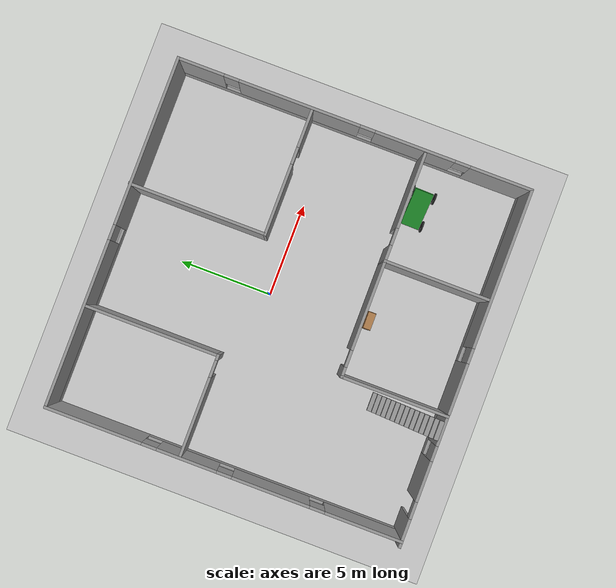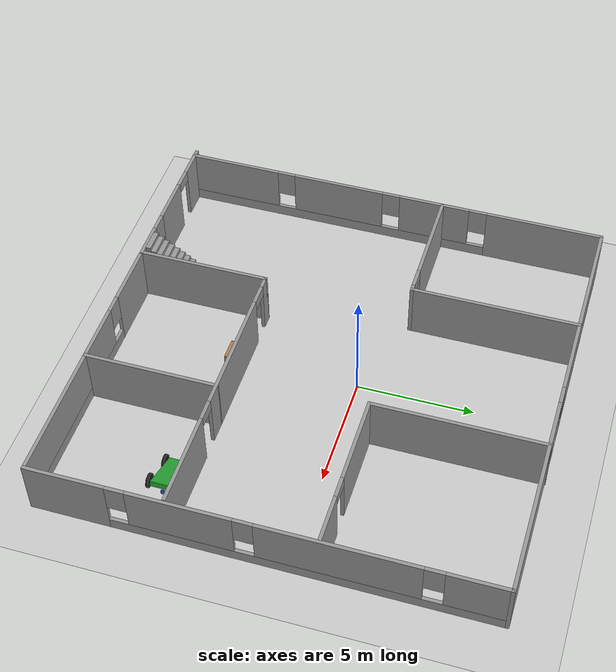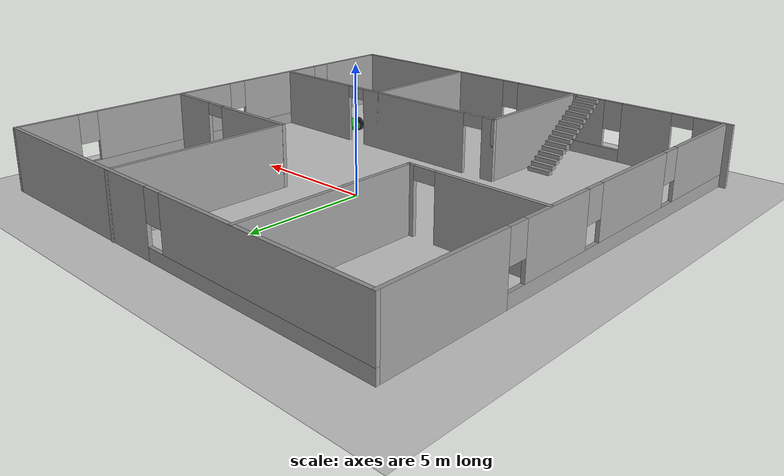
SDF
<sdf version="1.7">
 <world name="default">
  <model name="ground_plane">
   <static>1</static>
   <link name="link">
    <collision name="collision">
     <geometry><plane><normal>0 0 1</normal><size>100 100</size></plane></geometry>
     <surface><friction><ode><mu>100</mu><mu2>50</mu2></ode></friction></surface>
    </collision>
    <visual name="visual">
     <cast_shadows>0</cast_shadows>
     <geometry><plane><normal>0 0 1</normal><size>100 100</size></plane></geometry>
     <material>
      <script><uri>file://media/materials/scripts/gazebo.material</uri><name>Gazebo/Grey</name></script>
     </material>
    </visual>
   </link>
  </model>
  <model name="tony_house.world">
   <pose>0 -1 0 0 -0 0</pose>
   <link name="Stairs_0">
    <visual name="Stairs_0_Visual_0">
     <pose>-3.39052 -5.99335 0.083333 0 -0 0</pose>
     <geometry><box><size>1 0.233333 0.166667</size></box></geometry>
     <material>
      <script><uri>file://media/materials/scripts/gazebo.material</uri><name>Gazebo/Grey</name></script>
      <ambient>1 1 1 1</ambient>
     </material>
     <meta><layer>0</layer></meta>
    </visual>
    <collision name="Stairs_0_Collision_0">
     <geometry><box><size>1 0.233333 0.166667</size></box></geometry>
     <pose>-3.39052 -5.99335 0.083333 0 -0 0</pose>
    </collision>
    <visual name="Stairs_0_Visual_1">
     <pose>-3.39052 -6.22668 0.25 0 -0 0</pose>
     <geometry><box><size>1 0.233333 0.166667</size></box></geometry>
     <material>
      <script><uri>file://media/materials/scripts/gazebo.material</uri><name>Gazebo/Grey</name></script>
      <ambient>1 1 1 1</ambient>
     </material>
     <meta><layer>0</layer></meta>
    </visual>
    <collision name="Stairs_0_Collision_1">
     <geometry><box><size>1 0.233333 0.166667</size></box></geometry>
     <pose>-3.39052 -6.22668 0.25 0 -0 0</pose>
    </collision>
    <visual name="Stairs_0_Visual_2">
     <pose>-3.39052 -6.46001 0.416667 0 -0 0</pose>
     <geometry><box><size>1 0.233333 0.166667</size></box></geometry>
     <material>
      <script><uri>file://media/materials/scripts/gazebo.material</uri><name>Gazebo/Grey</name></script>
      <ambient>1 1 1 1</ambient>
     </material>
     <meta><layer>0</layer></meta>
    </visual>
    <collision name="Stairs_0_Collision_2">
     <geometry><box><size>1 0.233333 0.166667</size></box></geometry>
     <pose>-3.39052 -6.46001 0.416667 0 -0 0</pose>
    </collision>
    <visual name="Stairs_0_Visual_3">
     <pose>-3.39052 -6.69335 0.583333 0 -0 0</pose>
     <geometry><box><size>1 0.233333 0.166667</size></box></geometry>
     <material>
      <script><uri>file://media/materials/scripts/gazebo.material</uri><name>Gazebo/Grey</name></script>
      <ambient>1 1 1 1</ambient>
     </material>
     <meta><layer>0</layer></meta>
    </visual>
    <collision name="Stairs_0_Collision_3">
     <geometry><box><size>1 0.233333 0.166667</size></box></geometry>
     <pose>-3.39052 -6.69335 0.583333 0 -0 0</pose>
    </collision>
    <visual name="Stairs_0_Visual_4">
     <pose>-3.39052 -6.92668 0.75 0 -0 0</pose>
     <geometry><box><size>1 0.233333 0.166667</size></box></geometry>
     <material>
      <script><uri>file://media/materials/scripts/gazebo.material</uri><name>Gazebo/Grey</name></script>
      <ambient>1 1 1 1</ambient>
     </material>
     <meta><layer>0</layer></meta>
    </visual>
    <collision name="Stairs_0_Collision_4">
     <geometry><box><size>1 0.233333 0.166667</size></box></geometry>
     <pose>-3.39052 -6.92668 0.75 0 -0 0</pose>
    </collision>
    <visual name="Stairs_0_Visual_5">
     <pose>-3.39052 -7.16001 0.916667 0 -0 0</pose>
     <geometry><box><size>1 0.233333 0.166667</size></box></geometry>
     <material>
      <script><uri>file://media/materials/scripts/gazebo.material</uri><name>Gazebo/Grey</name></script>
      <ambient>1 1 1 1</ambient>
     </material>
     <meta><layer>0</layer></meta>
    </visual>
    <collision name="Stairs_0_Collision_5">
     <geometry><box><size>1 0.233333 0.166667</size></box></geometry>
     <pose>-3.39052 -7.16001 0.916667 0 -0 0</pose>
    </collision>
    <visual name="Stairs_0_Visual_6">
     <pose>-3.39052 -7.39335 1.08333 0 -0 0</pose>
     <geometry><box><size>1 0.233333 0.166667</size></box></geometry>
     <material>
      <script><uri>file://media/materials/scripts/gazebo.material</uri><name>Gazebo/Grey</name></script>
      <ambient>1 1 1 1</ambient>
     </material>
     <meta><layer>0</layer></meta>
    </visual>
    <collision name="Stairs_0_Collision_6">
     <geometry><box><size>1 0.233333 0.166667</size></box></geometry>
     <pose>-3.39052 -7.39335 1.08333 0 -0 0</pose>
    </collision>
    <visual name="Stairs_0_Visual_7">
     <pose>-3.39052 -7.62668 1.25 0 -0 0</pose>
     <geometry><box><size>1 0.233333 0.166667</size></box></geometry>
     <material>
      <script><uri>file://media/materials/scripts/gazebo.material</uri><name>Gazebo/Grey</name></script>
      <ambient>1 1 1 1</ambient>
     </material>
     <meta><layer>0</layer></meta>
    </visual>
    <collision name="Stairs_0_Collision_7">
     <geometry><box><size>1 0.233333 0.166667</size></box></geometry>
     <pose>-3.39052 -7.62668 1.25 0 -0 0</pose>
    </collision>
    <visual name="Stairs_0_Visual_8">
     <pose>-3.39052 -7.86001 1.41667 0 -0 0</pose>
     <geometry><box><size>1 0.233333 0.166667</size></box></geometry>
     <material>
      <script><uri>file://media/materials/scripts/gazebo.material</uri><name>Gazebo/Grey</name></script>
      <ambient>1 1 1 1</ambient>
     </material>
     <meta><layer>0</layer></meta>
    </visual>
    <collision name="Stairs_0_Collision_8">
     <geometry><box><size>1 0.233333 0.166667</size></box></geometry>
     <pose>-3.39052 -7.86001 1.41667 0 -0 0</pose>
    </collision>
    <visual name="Stairs_0_Visual_9">
     <pose>-3.39052 -8.09335 1.58333 0 -0 0</pose>
     <geometry><box><size>1 0.233333 0.166667</size></box></geometry>
     <material>
      <script><uri>file://media/materials/scripts/gazebo.material</uri><name>Gazebo/Grey</name></script>
      <ambient>1 1 1 1</ambient>
     </material>
     <meta><layer>0</layer></meta>
    </visual>
    <collision name="Stairs_0_Collision_9">
     <geometry><box><size>1 0.233333 0.166667</size></box></geometry>
     <pose>-3.39052 -8.09335 1.58333 0 -0 0</pose>
    </collision>
    <visual name="Stairs_0_Visual_10">
     <pose>-3.39052 -8.32668 1.75 0 -0 0</pose>
     <geometry><box><size>1 0.233333 0.166667</size></box></geometry>
     <material>
      <script><uri>file://media/materials/scripts/gazebo.material</uri><name>Gazebo/Grey</name></script>
      <ambient>1 1 1 1</ambient>
     </material>
     <meta><layer>0</layer></meta>
    </visual>
    <collision name="Stairs_0_Collision_10">
     <geometry><box><size>1 0.233333 0.166667</size></box></geometry>
     <pose>-3.39052 -8.32668 1.75 0 -0 0</pose>
    </collision>
    <visual name="Stairs_0_Visual_11">
     <pose>-3.39052 -8.56001 1.91667 0 -0 0</pose>
     <geometry><box><size>1 0.233333 0.166667</size></box></geometry>
     <material>
      <script><uri>file://media/materials/scripts/gazebo.material</uri><name>Gazebo/Grey</name></script>
      <ambient>1 1 1 1</ambient>
     </material>
     <meta><layer>0</layer></meta>
    </visual>
    <collision name="Stairs_0_Collision_11">
     <geometry><box><size>1 0.233333 0.166667</size></box></geometry>
     <pose>-3.39052 -8.56001 1.91667 0 -0 0</pose>
    </collision>
    <visual name="Stairs_0_Visual_12">
     <pose>-3.39052 -8.79335 2.08333 0 -0 0</pose>
     <geometry><box><size>1 0.233333 0.166667</size></box></geometry>
     <material>
      <script><uri>file://media/materials/scripts/gazebo.material</uri><name>Gazebo/Grey</name></script>
      <ambient>1 1 1 1</ambient>
     </material>
     <meta><layer>0</layer></meta>
    </visual>
    <collision name="Stairs_0_Collision_12">
     <geometry><box><size>1 0.233333 0.166667</size></box></geometry>
     <pose>-3.39052 -8.79335 2.08333 0 -0 0</pose>
    </collision>
    <visual name="Stairs_0_Visual_13">
     <pose>-3.39052 -9.02668 2.25 0 -0 0</pose>
     <geometry><box><size>1 0.233333 0.166667</size></box></geometry>
     <material>
      <script><uri>file://media/materials/scripts/gazebo.material</uri><name>Gazebo/Grey</name></script>
      <ambient>1 1 1 1</ambient>
     </material>
     <meta><layer>0</layer></meta>
    </visual>
    <collision name="Stairs_0_Collision_13">
     <geometry><box><size>1 0.233333 0.166667</size></box></geometry>
     <pose>-3.39052 -9.02668 2.25 0 -0 0</pose>
    </collision>
    <visual name="Stairs_0_Visual_14">
     <pose>-3.39052 -9.26001 2.41667 0 -0 0</pose>
     <geometry><box><size>1 0.233333 0.166667</size></box></geometry>
     <material>
      <script><uri>file://media/materials/scripts/gazebo.material</uri><name>Gazebo/Grey</name></script>
      <ambient>1 1 1 1</ambient>
     </material>
     <meta><layer>0</layer></meta>
    </visual>
    <collision name="Stairs_0_Collision_14">
     <geometry><box><size>1 0.233333 0.166667</size></box></geometry>
     <pose>-3.39052 -9.26001 2.41667 0 -0 0</pose>
    </collision>
   </link>
   <link name="Wall_1">
    <pose>-6.01156 -9.43056 0 0 -0 0.001171</pose>
    <visual name="Wall_1_Visual_0">
     <pose>-2.72986 0 1.25 0 -0 0</pose>
     <geometry><box><size>1.51416 0.15 2.5</size></box></geometry>
     <material>
      <script><uri>file://media/materials/scripts/gazebo.material</uri><name>Gazebo/Grey</name></script>
      <ambient>1 1 1 1</ambient>
     </material>
     <meta><layer>0</layer></meta>
    </visual>
    <collision name="Wall_1_Collision_0">
     <geometry><box><size>1.51416 0.15 2.5</size></box></geometry>
     <pose>-2.72986 0 1.25 0 -0 0</pose>
    </collision>
    <visual name="Wall_1_Visual_1">
     <pose>-0.004916 0 1.25 0 -0 0</pose>
     <geometry><box><size>2.13573 0.15 2.5</size></box></geometry>
     <material>
      <script><uri>file://media/materials/scripts/gazebo.material</uri><name>Gazebo/Grey</name></script>
      <ambient>1 1 1 1</ambient>
     </material>
     <meta><layer>0</layer></meta>
    </visual>
    <collision name="Wall_1_Collision_1">
     <geometry><box><size>2.13573 0.15 2.5</size></box></geometry>
     <pose>-0.004916 0 1.25 0 -0 0</pose>
    </collision>
    <visual name="Wall_1_Visual_2">
     <pose>2.27494 0 0.25 0 -0 0</pose>
     <geometry><box><size>2.42399 0.15 0.5</size></box></geometry>
     <material>
      <script><uri>file://media/materials/scripts/gazebo.material</uri><name>Gazebo/Grey</name></script>
      <ambient>1 1 1 1</ambient>
     </material>
     <meta><layer>0</layer></meta>
    </visual>
    <collision name="Wall_1_Collision_2">
     <geometry><box><size>2.42399 0.15 0.5</size></box></geometry>
     <pose>2.27494 0 0.25 0 -0 0</pose>
    </collision>
    <visual name="Wall_1_Visual_3">
     <pose>2.67494 0 1.5 0 -0 0</pose>
     <geometry><box><size>1.62399 0.15 2</size></box></geometry>
     <material>
      <script><uri>file://media/materials/scripts/gazebo.material</uri><name>Gazebo/Grey</name></script>
      <ambient>1 1 1 1</ambient>
     </material>
     <meta><layer>0</layer></meta>
    </visual>
    <collision name="Wall_1_Collision_3">
     <geometry><box><size>1.62399 0.15 2</size></box></geometry>
     <pose>2.67494 0 1.5 0 -0 0</pose>
    </collision>
    <visual name="Wall_1_Visual_4">
     <pose>1.46295 0 1.9 0 -0 0</pose>
     <geometry><box><size>0.8 0.15 1.2</size></box></geometry>
     <material>
      <script><uri>file://media/materials/scripts/gazebo.material</uri><name>Gazebo/Grey</name></script>
      <ambient>1 1 1 1</ambient>
     </material>
     <meta><layer>0</layer></meta>
    </visual>
    <collision name="Wall_1_Collision_4">
     <geometry><box><size>0.8 0.15 1.2</size></box></geometry>
     <pose>1.46295 0 1.9 0 -0 0</pose>
    </collision>
    <visual name="Wall_1_Visual_5">
     <pose>-1.52278 0 2.25 0 -0 0</pose>
     <geometry><box><size>0.9 0.15 0.5</size></box></geometry>
     <material>
      <script><uri>file://media/materials/scripts/gazebo.material</uri><name>Gazebo/Grey</name></script>
      <ambient>1 1 1 1</ambient>
     </material>
     <meta><layer>0</layer></meta>
    </visual>
    <collision name="Wall_1_Collision_5">
     <geometry><box><size>0.9 0.15 0.5</size></box></geometry>
     <pose>-1.52278 0 2.25 0 -0 0</pose>
    </collision>
   </link>
   <link name="Wall_10">
    <pose>3.32538 -3.82656 0 0 -0 0</pose>
    <visual name="Wall_10_Visual_0">
     <pose>-5.70576 0 1.25 0 -0 0</pose>
     <geometry><box><size>0.588485 0.15 2.5</size></box></geometry>
     <material>
      <script><uri>file://media/materials/scripts/gazebo.material</uri><name>Gazebo/Grey</name></script>
      <ambient>1 1 1 1</ambient>
     </material>
     <meta><layer>0</layer></meta>
    </visual>
    <collision name="Wall_10_Collision_0">
     <geometry><box><size>0.588485 0.15 2.5</size></box></geometry>
     <pose>-5.70576 0 1.25 0 -0 0</pose>
    </collision>
    <visual name="Wall_10_Visual_1">
     <pose>-1.72323 0 1.25 0 -0 0</pose>
     <geometry><box><size>5.57657 0.15 2.5</size></box></geometry>
     <material>
      <script><uri>file://media/materials/scripts/gazebo.material</uri><name>Gazebo/Grey</name></script>
      <ambient>1 1 1 1</ambient>
     </material>
     <meta><layer>0</layer></meta>
    </visual>
    <collision name="Wall_10_Collision_1">
     <geometry><box><size>5.57657 0.15 2.5</size></box></geometry>
     <pose>-1.72323 0 1.25 0 -0 0</pose>
    </collision>
    <visual name="Wall_10_Visual_2">
     <pose>3.98253 0 1.25 0 -0 0</pose>
     <geometry><box><size>4.03494 0.15 2.5</size></box></geometry>
     <material>
      <script><uri>file://media/materials/scripts/gazebo.material</uri><name>Gazebo/Grey</name></script>
      <ambient>1 1 1 1</ambient>
     </material>
     <meta><layer>0</layer></meta>
    </visual>
    <collision name="Wall_10_Collision_2">
     <geometry><box><size>4.03494 0.15 2.5</size></box></geometry>
     <pose>3.98253 0 1.25 0 -0 0</pose>
    </collision>
    <visual name="Wall_10_Visual_3">
     <pose>-4.96152 0 2.25 0 -0 0</pose>
     <geometry><box><size>0.9 0.15 0.5</size></box></geometry>
     <material>
      <script><uri>file://media/materials/scripts/gazebo.material</uri><name>Gazebo/Grey</name></script>
      <ambient>1 1 1 1</ambient>
     </material>
     <meta><layer>0</layer></meta>
    </visual>
    <collision name="Wall_10_Collision_3">
     <geometry><box><size>0.9 0.15 0.5</size></box></geometry>
     <pose>-4.96152 0 2.25 0 -0 0</pose>
    </collision>
    <visual name="Wall_10_Visual_4">
     <pose>1.51506 0 2.25 0 -0 0</pose>
     <geometry><box><size>0.9 0.15 0.5</size></box></geometry>
     <material>
      <script><uri>file://media/materials/scripts/gazebo.material</uri><name>Gazebo/Grey</name></script>
      <ambient>1 1 1 1</ambient>
     </material>
     <meta><layer>0</layer></meta>
    </visual>
    <collision name="Wall_10_Collision_4">
     <geometry><box><size>0.9 0.15 0.5</size></box></geometry>
     <pose>1.51506 0 2.25 0 -0 0</pose>
    </collision>
   </link>
   <link name="Wall_12">
    <collision name="Wall_12_Collision">
     <geometry><box><size>5.75 0.15 2.5</size></box></geometry>
     <pose>0 0 1.25 0 -0 0</pose>
    </collision>
    <visual name="Wall_12_Visual">
     <pose>0 0 1.25 0 -0 0</pose>
     <geometry><box><size>5.75 0.15 2.5</size></box></geometry>
     <material>
      <script><uri>file://media/materials/scripts/gazebo.material</uri><name>Gazebo/Grey</name></script>
      <ambient>1 1 1 1</ambient>
     </material>
     <meta><layer>0</layer></meta>
    </visual>
    <pose>3.54453 -6.62656 0 0 -0 -1.5708</pose>
   </link>
   <link name="Wall_14">
    <pose>5.98556 2.23237 0 0 -0 0</pose>
    <visual name="Wall_14_Visual_0">
     <pose>-1.46444 0 1.25 0 -0 0</pose>
     <geometry><box><size>3.82112 0.15 2.5</size></box></geometry>
     <material>
      <script><uri>file://media/materials/scripts/gazebo.material</uri><name>Gazebo/Grey</name></script>
      <ambient>1 1 1 1</ambient>
     </material>
     <meta><layer>0</layer></meta>
    </visual>
    <collision name="Wall_14_Collision_0">
     <geometry><box><size>3.82112 0.15 2.5</size></box></geometry>
     <pose>-1.46444 0 1.25 0 -0 0</pose>
    </collision>
    <visual name="Wall_14_Visual_1">
     <pose>2.36056 0 1.25 0 -0 0</pose>
     <geometry><box><size>2.02888 0.15 2.5</size></box></geometry>
     <material>
      <script><uri>file://media/materials/scripts/gazebo.material</uri><name>Gazebo/Grey</name></script>
      <ambient>1 1 1 1</ambient>
     </material>
     <meta><layer>0</layer></meta>
    </visual>
    <collision name="Wall_14_Collision_1">
     <geometry><box><size>2.02888 0.15 2.5</size></box></geometry>
     <pose>2.36056 0 1.25 0 -0 0</pose>
    </collision>
    <visual name="Wall_14_Visual_2">
     <pose>0.896121 0 2.25 0 -0 0</pose>
     <geometry><box><size>0.9 0.15 0.5</size></box></geometry>
     <material>
      <script><uri>file://media/materials/scripts/gazebo.material</uri><name>Gazebo/Grey</name></script>
      <ambient>1 1 1 1</ambient>
     </material>
     <meta><layer>0</layer></meta>
    </visual>
    <collision name="Wall_14_Collision_2">
     <geometry><box><size>0.9 0.15 0.5</size></box></geometry>
     <pose>0.896121 0 2.25 0 -0 0</pose>
    </collision>
   </link>
   <link name="Wall_18">
    <collision name="Wall_18_Collision">
     <geometry><box><size>7.25 0.15 2.5</size></box></geometry>
     <pose>0 0 1.25 0 -0 0</pose>
    </collision>
    <visual name="Wall_18_Visual">
     <pose>0 0 1.25 0 -0 0</pose>
     <geometry><box><size>7.25 0.15 2.5</size></box></geometry>
     <material>
      <script><uri>file://media/materials/scripts/gazebo.material</uri><name>Gazebo/Grey</name></script>
      <ambient>1 1 1 1</ambient>
     </material>
     <meta><layer>0</layer></meta>
    </visual>
    <pose>-3.77724 5.84349 0 0 -0 -1.5708</pose>
   </link>
   <link name="Wall_20">
    <collision name="Wall_20_Collision">
     <geometry><box><size>7.25 0.15 2.5</size></box></geometry>
     <pose>0 0 1.25 0 -0 0</pose>
    </collision>
    <visual name="Wall_20_Visual">
     <pose>0 0 1.25 0 -0 0</pose>
     <geometry><box><size>7.25 0.15 2.5</size></box></geometry>
     <material>
      <script><uri>file://media/materials/scripts/gazebo.material</uri><name>Gazebo/Grey</name></script>
      <ambient>1 1 1 1</ambient>
     </material>
     <meta><layer>0</layer></meta>
    </visual>
    <pose>2.68958 5.89002 0 0 -0 -1.5708</pose>
   </link>
   <link name="Wall_22">
    <pose>-6.45224 2.29349 0 0 -0 3.14159</pose>
    <visual name="Wall_22_Visual_0">
     <pose>-2.58857 0 1.25 0 -0 0</pose>
     <geometry><box><size>0.322859 0.15 2.5</size></box></geometry>
     <material>
      <script><uri>file://media/materials/scripts/gazebo.material</uri><name>Gazebo/Grey</name></script>
      <ambient>1 1 1 1</ambient>
     </material>
     <meta><layer>0</layer></meta>
    </visual>
    <collision name="Wall_22_Collision_0">
     <geometry><box><size>0.322859 0.15 2.5</size></box></geometry>
     <pose>-2.58857 0 1.25 0 -0 0</pose>
    </collision>
    <visual name="Wall_22_Visual_1">
     <pose>0.611429 0 1.25 0 -0 0</pose>
     <geometry><box><size>4.27714 0.15 2.5</size></box></geometry>
     <material>
      <script><uri>file://media/materials/scripts/gazebo.material</uri><name>Gazebo/Grey</name></script>
      <ambient>1 1 1 1</ambient>
     </material>
     <meta><layer>0</layer></meta>
    </visual>
    <collision name="Wall_22_Collision_1">
     <geometry><box><size>4.27714 0.15 2.5</size></box></geometry>
     <pose>0.611429 0 1.25 0 -0 0</pose>
    </collision>
    <visual name="Wall_22_Visual_2">
     <pose>-1.97714 0 2.25 0 -0 0</pose>
     <geometry><box><size>0.9 0.15 0.5</size></box></geometry>
     <material>
      <script><uri>file://media/materials/scripts/gazebo.material</uri><name>Gazebo/Grey</name></script>
      <ambient>1 1 1 1</ambient>
     </material>
     <meta><layer>0</layer></meta>
    </visual>
    <collision name="Wall_22_Collision_2">
     <geometry><box><size>0.9 0.15 0.5</size></box></geometry>
     <pose>-1.97714 0 2.25 0 -0 0</pose>
    </collision>
   </link>
   <link name="Wall_24">
    <collision name="Wall_24_Collision">
     <geometry><box><size>5.75 0.15 2.5</size></box></geometry>
     <pose>0 0 1.25 0 -0 0</pose>
    </collision>
    <visual name="Wall_24_Visual">
     <pose>0 0 1.25 0 -0 0</pose>
     <geometry><box><size>5.75 0.15 2.5</size></box></geometry>
     <material>
      <script><uri>file://media/materials/scripts/gazebo.material</uri><name>Gazebo/Grey</name></script>
      <ambient>1 1 1 1</ambient>
     </material>
     <meta><layer>0</layer></meta>
    </visual>
    <pose>-2.59962 -6.62656 0 0 -0 -1.5708</pose>
   </link>
   <link name="Wall_3">
    <pose>3.49858 -9.44002 0 0 -0 0</pose>
    <visual name="Wall_3_Visual_0">
     <pose>-4.64469 0 1.25 0 -0 0</pose>
     <geometry><box><size>2.71062 0.15 2.5</size></box></geometry>
     <material>
      <script><uri>file://media/materials/scripts/gazebo.material</uri><name>Gazebo/Grey</name></script>
      <ambient>1 1 1 1</ambient>
     </material>
     <meta><layer>0</layer></meta>
    </visual>
    <collision name="Wall_3_Collision_0">
     <geometry><box><size>2.71062 0.15 2.5</size></box></geometry>
     <pose>-4.64469 0 1.25 0 -0 0</pose>
    </collision>
    <visual name="Wall_3_Visual_1">
     <pose>1.35531 0 0.25 0 -0 0</pose>
     <geometry><box><size>9.28938 0.15 0.5</size></box></geometry>
     <material>
      <script><uri>file://media/materials/scripts/gazebo.material</uri><name>Gazebo/Grey</name></script>
      <ambient>1 1 1 1</ambient>
     </material>
     <meta><layer>0</layer></meta>
    </visual>
    <collision name="Wall_3_Collision_1">
     <geometry><box><size>9.28938 0.15 0.5</size></box></geometry>
     <pose>1.35531 0 0.25 0 -0 0</pose>
    </collision>
    <visual name="Wall_3_Visual_2">
     <pose>1.75531 0 1.5 0 -0 0</pose>
     <geometry><box><size>8.48938 0.15 2</size></box></geometry>
     <material>
      <script><uri>file://media/materials/scripts/gazebo.material</uri><name>Gazebo/Grey</name></script>
      <ambient>1 1 1 1</ambient>
     </material>
     <meta><layer>0</layer></meta>
    </visual>
    <collision name="Wall_3_Collision_2">
     <geometry><box><size>8.48938 0.15 2</size></box></geometry>
     <pose>1.75531 0 1.5 0 -0 0</pose>
    </collision>
    <visual name="Wall_3_Visual_3">
     <pose>-2.88938 0 1.9 0 -0 0</pose>
     <geometry><box><size>0.8 0.15 1.2</size></box></geometry>
     <material>
      <script><uri>file://media/materials/scripts/gazebo.material</uri><name>Gazebo/Grey</name></script>
      <ambient>1 1 1 1</ambient>
     </material>
     <meta><layer>0</layer></meta>
    </visual>
    <collision name="Wall_3_Collision_3">
     <geometry><box><size>0.8 0.15 1.2</size></box></geometry>
     <pose>-2.88938 0 1.9 0 -0 0</pose>
    </collision>
   </link>
   <link name="Wall_4">
    <pose>9.42358 -0.015016 0 0 -0 1.5708</pose>
    <visual name="Wall_4_Visual_0">
     <pose>-7.8218 0 1.25 0 -0 0</pose>
     <geometry><box><size>3.3564 0.15 2.5</size></box></geometry>
     <material>
      <script><uri>file://media/materials/scripts/gazebo.material</uri><name>Gazebo/Grey</name></script>
      <ambient>1 1 1 1</ambient>
     </material>
     <meta><layer>0</layer></meta>
    </visual>
    <collision name="Wall_4_Collision_0">
     <geometry><box><size>3.3564 0.15 2.5</size></box></geometry>
     <pose>-7.8218 0 1.25 0 -0 0</pose>
    </collision>
    <visual name="Wall_4_Visual_1">
     <pose>1.6782 0 0.25 0 -0 0</pose>
     <geometry><box><size>15.6436 0.15 0.5</size></box></geometry>
     <material>
      <script><uri>file://media/materials/scripts/gazebo.material</uri><name>Gazebo/Grey</name></script>
      <ambient>1 1 1 1</ambient>
     </material>
     <meta><layer>0</layer></meta>
    </visual>
    <collision name="Wall_4_Collision_1">
     <geometry><box><size>15.6436 0.15 0.5</size></box></geometry>
     <pose>1.6782 0 0.25 0 -0 0</pose>
    </collision>
    <visual name="Wall_4_Visual_2">
     <pose>-3.21561 0 1.5 0 -0 0</pose>
     <geometry><box><size>4.25599 0.15 2</size></box></geometry>
     <material>
      <script><uri>file://media/materials/scripts/gazebo.material</uri><name>Gazebo/Grey</name></script>
      <ambient>1 1 1 1</ambient>
     </material>
     <meta><layer>0</layer></meta>
    </visual>
    <collision name="Wall_4_Collision_2">
     <geometry><box><size>4.25599 0.15 2</size></box></geometry>
     <pose>-3.21561 0 1.5 0 -0 0</pose>
    </collision>
    <visual name="Wall_4_Visual_3">
     <pose>2.94431 0 1.5 0 -0 0</pose>
     <geometry><box><size>6.46384 0.15 2</size></box></geometry>
     <material>
      <script><uri>file://media/materials/scripts/gazebo.material</uri><name>Gazebo/Grey</name></script>
      <ambient>1 1 1 1</ambient>
     </material>
     <meta><layer>0</layer></meta>
    </visual>
    <collision name="Wall_4_Collision_3">
     <geometry><box><size>6.46384 0.15 2</size></box></geometry>
     <pose>2.94431 0 1.5 0 -0 0</pose>
    </collision>
    <visual name="Wall_4_Visual_4">
     <pose>8.23811 0 1.5 0 -0 0</pose>
     <geometry><box><size>2.52377 0.15 2</size></box></geometry>
     <material>
      <script><uri>file://media/materials/scripts/gazebo.material</uri><name>Gazebo/Grey</name></script>
      <ambient>1 1 1 1</ambient>
     </material>
     <meta><layer>0</layer></meta>
    </visual>
    <collision name="Wall_4_Collision_4">
     <geometry><box><size>2.52377 0.15 2</size></box></geometry>
     <pose>8.23811 0 1.5 0 -0 0</pose>
    </collision>
    <visual name="Wall_4_Visual_5">
     <pose>-5.7436 0 1.9 0 -0 0</pose>
     <geometry><box><size>0.8 0.15 1.2</size></box></geometry>
     <material>
      <script><uri>file://media/materials/scripts/gazebo.material</uri><name>Gazebo/Grey</name></script>
      <ambient>1 1 1 1</ambient>
     </material>
     <meta><layer>0</layer></meta>
    </visual>
    <collision name="Wall_4_Collision_5">
     <geometry><box><size>0.8 0.15 1.2</size></box></geometry>
     <pose>-5.7436 0 1.9 0 -0 0</pose>
    </collision>
    <visual name="Wall_4_Visual_6">
     <pose>-0.687612 0 1.9 0 -0 0</pose>
     <geometry><box><size>0.8 0.15 1.2</size></box></geometry>
     <material>
      <script><uri>file://media/materials/scripts/gazebo.material</uri><name>Gazebo/Grey</name></script>
      <ambient>1 1 1 1</ambient>
     </material>
     <meta><layer>0</layer></meta>
    </visual>
    <collision name="Wall_4_Collision_6">
     <geometry><box><size>0.8 0.15 1.2</size></box></geometry>
     <pose>-0.687612 0 1.9 0 -0 0</pose>
    </collision>
    <visual name="Wall_4_Visual_7">
     <pose>6.57623 0 1.9 0 -0 0</pose>
     <geometry><box><size>0.8 0.15 1.2</size></box></geometry>
     <material>
      <script><uri>file://media/materials/scripts/gazebo.material</uri><name>Gazebo/Grey</name></script>
      <ambient>1 1 1 1</ambient>
     </material>
     <meta><layer>0</layer></meta>
    </visual>
    <collision name="Wall_4_Collision_7">
     <geometry><box><size>0.8 0.15 1.2</size></box></geometry>
     <pose>6.57623 0 1.9 0 -0 0</pose>
    </collision>
   </link>
   <link name="Wall_5">
    <pose>0.123583 9.40998 0 0 -0 3.14159</pose>
    <visual name="Wall_5_Visual_0">
     <pose>-4.87823 0 1.25 0 -0 0</pose>
     <geometry><box><size>8.99354 0.15 2.5</size></box></geometry>
     <material>
      <script><uri>file://media/materials/scripts/gazebo.material</uri><name>Gazebo/Grey</name></script>
      <ambient>1 1 1 1</ambient>
     </material>
     <meta><layer>0</layer></meta>
    </visual>
    <collision name="Wall_5_Collision_0">
     <geometry><box><size>8.99354 0.15 2.5</size></box></geometry>
     <pose>-4.87823 0 1.25 0 -0 0</pose>
    </collision>
    <visual name="Wall_5_Visual_1">
     <pose>4.49677 0 0.25 0 -0 0</pose>
     <geometry><box><size>9.75646 0.15 0.5</size></box></geometry>
     <material>
      <script><uri>file://media/materials/scripts/gazebo.material</uri><name>Gazebo/Grey</name></script>
      <ambient>1 1 1 1</ambient>
     </material>
     <meta><layer>0</layer></meta>
    </visual>
    <collision name="Wall_5_Collision_1">
     <geometry><box><size>9.75646 0.15 0.5</size></box></geometry>
     <pose>4.49677 0 0.25 0 -0 0</pose>
    </collision>
    <visual name="Wall_5_Visual_2">
     <pose>4.89677 0 1.5 0 -0 0</pose>
     <geometry><box><size>8.95646 0.15 2</size></box></geometry>
     <material>
      <script><uri>file://media/materials/scripts/gazebo.material</uri><name>Gazebo/Grey</name></script>
      <ambient>1 1 1 1</ambient>
     </material>
     <meta><layer>0</layer></meta>
    </visual>
    <collision name="Wall_5_Collision_2">
     <geometry><box><size>8.95646 0.15 2</size></box></geometry>
     <pose>4.89677 0 1.5 0 -0 0</pose>
    </collision>
    <visual name="Wall_5_Visual_3">
     <pose>0.018538 0 1.9 0 -0 0</pose>
     <geometry><box><size>0.8 0.15 1.2</size></box></geometry>
     <material>
      <script><uri>file://media/materials/scripts/gazebo.material</uri><name>Gazebo/Grey</name></script>
      <ambient>1 1 1 1</ambient>
     </material>
     <meta><layer>0</layer></meta>
    </visual>
    <collision name="Wall_5_Collision_3">
     <geometry><box><size>0.8 0.15 1.2</size></box></geometry>
     <pose>0.018538 0 1.9 0 -0 0</pose>
    </collision>
   </link>
   <link name="Wall_6">
    <pose>-9.17642 -0.015016 0 0 -0 -1.5708</pose>
    <visual name="Wall_6_Visual_0">
     <pose>-6.9156 0 1.25 0 -0 0</pose>
     <geometry><box><size>5.1688 0.15 2.5</size></box></geometry>
     <material>
      <script><uri>file://media/materials/scripts/gazebo.material</uri><name>Gazebo/Grey</name></script>
      <ambient>1 1 1 1</ambient>
     </material>
     <meta><layer>0</layer></meta>
    </visual>
    <collision name="Wall_6_Collision_0">
     <geometry><box><size>5.1688 0.15 2.5</size></box></geometry>
     <pose>-6.9156 0 1.25 0 -0 0</pose>
    </collision>
    <visual name="Wall_6_Visual_1">
     <pose>2.5844 0 0.25 0 -0 0</pose>
     <geometry><box><size>13.8312 0.15 0.5</size></box></geometry>
     <material>
      <script><uri>file://media/materials/scripts/gazebo.material</uri><name>Gazebo/Grey</name></script>
      <ambient>1 1 1 1</ambient>
     </material>
     <meta><layer>0</layer></meta>
    </visual>
    <collision name="Wall_6_Collision_1">
     <geometry><box><size>13.8312 0.15 0.5</size></box></geometry>
     <pose>2.5844 0 0.25 0 -0 0</pose>
    </collision>
    <visual name="Wall_6_Visual_2">
     <pose>-1.94373 0 1.5 0 -0 0</pose>
     <geometry><box><size>3.17493 0.15 2</size></box></geometry>
     <material>
      <script><uri>file://media/materials/scripts/gazebo.material</uri><name>Gazebo/Grey</name></script>
      <ambient>1 1 1 1</ambient>
     </material>
     <meta><layer>0</layer></meta>
    </visual>
    <collision name="Wall_6_Collision_2">
     <geometry><box><size>3.17493 0.15 2</size></box></geometry>
     <pose>-1.94373 0 1.5 0 -0 0</pose>
    </collision>
    <visual name="Wall_6_Visual_3">
     <pose>2.50201 0 1.5 0 -0 0</pose>
     <geometry><box><size>4.11655 0.15 2</size></box></geometry>
     <material>
      <script><uri>file://media/materials/scripts/gazebo.material</uri><name>Gazebo/Grey</name></script>
      <ambient>1 1 1 1</ambient>
     </material>
     <meta><layer>0</layer></meta>
    </visual>
    <collision name="Wall_6_Collision_3">
     <geometry><box><size>4.11655 0.15 2</size></box></geometry>
     <pose>2.50201 0 1.5 0 -0 0</pose>
    </collision>
    <visual name="Wall_6_Visual_4">
     <pose>7.43014 0 1.5 0 -0 0</pose>
     <geometry><box><size>4.13971 0.15 2</size></box></geometry>
     <material>
      <script><uri>file://media/materials/scripts/gazebo.material</uri><name>Gazebo/Grey</name></script>
      <ambient>1 1 1 1</ambient>
     </material>
     <meta><layer>0</layer></meta>
    </visual>
    <collision name="Wall_6_Collision_4">
     <geometry><box><size>4.13971 0.15 2</size></box></geometry>
     <pose>7.43014 0 1.5 0 -0 0</pose>
    </collision>
    <visual name="Wall_6_Visual_5">
     <pose>-3.9312 0 1.9 0 -0 0</pose>
     <geometry><box><size>0.8 0.15 1.2</size></box></geometry>
     <material>
      <script><uri>file://media/materials/scripts/gazebo.material</uri><name>Gazebo/Grey</name></script>
      <ambient>1 1 1 1</ambient>
     </material>
     <meta><layer>0</layer></meta>
    </visual>
    <collision name="Wall_6_Collision_5">
     <geometry><box><size>0.8 0.15 1.2</size></box></geometry>
     <pose>-3.9312 0 1.9 0 -0 0</pose>
    </collision>
    <visual name="Wall_6_Visual_6">
     <pose>0.043735 0 1.9 0 -0 0</pose>
     <geometry><box><size>0.8 0.15 1.2</size></box></geometry>
     <material>
      <script><uri>file://media/materials/scripts/gazebo.material</uri><name>Gazebo/Grey</name></script>
      <ambient>1 1 1 1</ambient>
     </material>
     <meta><layer>0</layer></meta>
    </visual>
    <collision name="Wall_6_Collision_6">
     <geometry><box><size>0.8 0.15 1.2</size></box></geometry>
     <pose>0.043735 0 1.9 0 -0 0</pose>
    </collision>
    <visual name="Wall_6_Visual_7">
     <pose>4.96028 0 1.9 0 -0 0</pose>
     <geometry><box><size>0.8 0.15 1.2</size></box></geometry>
     <material>
      <script><uri>file://media/materials/scripts/gazebo.material</uri><name>Gazebo/Grey</name></script>
      <ambient>1 1 1 1</ambient>
     </material>
     <meta><layer>0</layer></meta>
    </visual>
    <collision name="Wall_6_Collision_7">
     <geometry><box><size>0.8 0.15 1.2</size></box></geometry>
     <pose>4.96028 0 1.9 0 -0 0</pose>
    </collision>
   </link>
   <static>1</static>
  </model>
  <model name="bookshelf_0">
   <static>1</static>
   <link name="link">
    <inertial><mass>1</mass></inertial>
    <collision name="back">
     <pose>0 0.005 0.6 0 -0 0</pose>
     <geometry><box><size>0.9 0.01 1.2</size></box></geometry>
    </collision>
    <visual name="visual1">
     <pose>0 0.005 0.6 0 -0 0</pose>
     <geometry><box><size>0.9 0.01 1.2</size></box></geometry>
     <material>
      <script><uri>file://media/materials/scripts/gazebo.material</uri><name>Gazebo/Wood</name></script>
     </material>
    </visual>
    <collision name="left_side">
     <pose>0.45 -0.195 0.6 0 -0 0</pose>
     <geometry><box><size>0.02 0.4 1.2</size></box></geometry>
    </collision>
    <visual name="visual2">
     <pose>0.45 -0.195 0.6 0 -0 0</pose>
     <geometry><box><size>0.02 0.4 1.2</size></box></geometry>
     <material>
      <script><uri>file://media/materials/scripts/gazebo.material</uri><name>Gazebo/Wood</name></script>
     </material>
    </visual>
    <collision name="right_side">
     <pose>-0.45 -0.195 0.6 0 -0 0</pose>
     <geometry><box><size>0.02 0.4 1.2</size></box></geometry>
    </collision>
    <visual name="visual3">
     <pose>-0.45 -0.195 0.6 0 -0 0</pose>
     <geometry><box><size>0.02 0.4 1.2</size></box></geometry>
     <material>
      <script><uri>file://media/materials/scripts/gazebo.material</uri><name>Gazebo/Wood</name></script>
     </material>
    </visual>
    <collision name="bottom">
     <pose>0 -0.195 0.03 0 -0 0</pose>
     <geometry><box><size>0.88 0.4 0.06</size></box></geometry>
    </collision>
    <visual name="visual4">
     <pose>0 -0.195 0.03 0 -0 0</pose>
     <geometry><box><size>0.88 0.4 0.06</size></box></geometry>
     <material>
      <script><uri>file://media/materials/scripts/gazebo.material</uri><name>Gazebo/Wood</name></script>
     </material>
    </visual>
    <collision name="top">
     <pose>0 -0.195 1.19 0 -0 0</pose>
     <geometry><box><size>0.88 0.4 0.02</size></box></geometry>
    </collision>
    <visual name="visual5">
     <pose>0 -0.195 1.19 0 -0 0</pose>
     <geometry><box><size>0.88 0.4 0.02</size></box></geometry>
     <material>
      <script><uri>file://media/materials/scripts/gazebo.material</uri><name>Gazebo/Wood</name></script>
     </material>
    </visual>
    <collision name="low_shelf">
     <pose>0 -0.195 0.43 0 -0 0</pose>
     <geometry><box><size>0.88 0.4 0.02</size></box></geometry>
    </collision>
    <visual name="visual6">
     <pose>0 -0.195 0.43 0 -0 0</pose>
     <geometry><box><size>0.88 0.4 0.02</size></box></geometry>
     <material>
      <script><uri>file://media/materials/scripts/gazebo.material</uri><name>Gazebo/Wood</name></script>
     </material>
    </visual>
    <collision name="high_shelf">
     <pose>0 -0.195 0.8 0 -0 0</pose>
     <geometry><box><size>0.88 0.4 0.02</size></box></geometry>
    </collision>
    <visual name="visual7">
     <pose>0 -0.195 0.8 0 -0 0</pose>
     <geometry><box><size>0.88 0.4 0.02</size></box></geometry>
     <material>
      <script><uri>file://media/materials/scripts/gazebo.material</uri><name>Gazebo/Wood</name></script>
     </material>
    </visual>
   </link>
   <pose>0.526722 -5.07562 0 0 -0 0</pose>
  </model>
  <model name="car">
   <link name="chassis">
    <pose>0 0 0.3 0 -0 0</pose>
    <collision name="collision"><geometry><box><size>2 1 0.2</size></box></geometry></collision>
    <visual name="visual">
     <geometry><box><size>2 1 0.2</size></box></geometry>
     <material>
      <script><uri>file://media/materials/scripts/gazebo.material</uri><name>Gazebo/Green</name></script>
     </material>
    </visual>
    <inertial>
     <inertia><ixx>1</ixx><ixy>0</ixy><ixz>0</ixz><iyy>1</iyy><iyz>0</iyz><izz>1</izz></inertia>
     <mass>1</mass>
    </inertial>
   </link>
   <link name="front_left_wheel">
    <pose>0.8 0.6 0.3 -0 1.5707 1.5707</pose>
    <collision name="collision">
     <geometry><cylinder><radius>0.3</radius><length>0.1</length></cylinder></geometry>
    </collision>
    <visual name="visual">
     <geometry><cylinder><radius>0.3</radius><length>0.1</length></cylinder></geometry>
     <material>
      <script><uri>file://media/materials/scripts/gazebo.material</uri><name>Gazebo/Black</name></script>
     </material>
    </visual>
    <inertial>
     <inertia><ixx>1</ixx><ixy>0</ixy><ixz>0</ixz><iyy>1</iyy><iyz>0</iyz><izz>1</izz></inertia>
     <mass>1</mass>
    </inertial>
   </link>
   <link name="front_right_wheel">
    <pose>0.8 -0.6 0.3 -0 1.5707 1.5707</pose>
    <collision name="collision">
     <geometry><cylinder><radius>0.3</radius><length>0.1</length></cylinder></geometry>
    </collision>
    <visual name="visual">
     <geometry><cylinder><radius>0.3</radius><length>0.1</length></cylinder></geometry>
     <material>
      <script><uri>file://media/materials/scripts/gazebo.material</uri><name>Gazebo/Black</name></script>
     </material>
    </visual>
    <inertial>
     <inertia><ixx>1</ixx><ixy>0</ixy><ixz>0</ixz><iyy>1</iyy><iyz>0</iyz><izz>1</izz></inertia>
     <mass>1</mass>
    </inertial>
   </link>
   <link name="back_right_wheel">
    <pose>-0.8 -0.6 0.3 -0 1.5707 1.5707</pose>
    <collision name="collision">
     <geometry><cylinder><radius>0.3</radius><length>0.1</length></cylinder></geometry>
    </collision>
    <visual name="visual">
     <geometry><cylinder><radius>0.3</radius><length>0.1</length></cylinder></geometry>
     <material>
      <script><uri>file://media/materials/scripts/gazebo.material</uri><name>Gazebo/Black</name></script>
     </material>
    </visual>
    <inertial>
     <inertia><ixx>1</ixx><ixy>0</ixy><ixz>0</ixz><iyy>1</iyy><iyz>0</iyz><izz>1</izz></inertia>
     <mass>1</mass>
    </inertial>
   </link>
   <link name="back_left_wheel">
    <pose>-0.8 0.6 0.3 -0 1.5707 1.5707</pose>
    <collision name="collision">
     <geometry><cylinder><radius>0.3</radius><length>0.1</length></cylinder></geometry>
    </collision>
    <visual name="visual">
     <geometry><cylinder><radius>0.3</radius><length>0.1</length></cylinder></geometry>
     <material>
      <script><uri>file://media/materials/scripts/gazebo.material</uri><name>Gazebo/Black</name></script>
     </material>
    </visual>
    <inertial>
     <inertia><ixx>1</ixx><ixy>0</ixy><ixz>0</ixz><iyy>1</iyy><iyz>0</iyz><izz>1</izz></inertia>
     <mass>1</mass>
    </inertial>
   </link>
   <link name="gas_pedal">
    <pose>0.3 0.1 0.5 0 -0 0</pose>
    <collision name="collision"><geometry><box><size>0.1 0.1 0.1</size></box></geometry></collision>
    <visual name="visual">
     <geometry><box><size>0.1 0.1 0.1</size></box></geometry>
     <material>
      <script><uri>file://media/materials/scripts/gazebo.material</uri><name>Gazebo/Red</name></script>
     </material>
    </visual>
    <inertial>
     <inertia><ixx>1</ixx><ixy>0</ixy><ixz>0</ixz><iyy>1</iyy><iyz>0</iyz><izz>1</izz></inertia>
     <mass>1</mass>
    </inertial>
   </link>
   <link name="brake_pedal">
    <pose>0.3 0.25 0.5 0 -0 0</pose>
    <collision name="collision"><geometry><box><size>0.1 0.1 0.1</size></box></geometry></collision>
    <visual name="visual">
     <geometry><box><size>0.1 0.1 0.1</size></box></geometry>
     <material>
      <script><uri>file://media/materials/scripts/gazebo.material</uri><name>Gazebo/Blue</name></script>
     </material>
    </visual>
    <inertial>
     <inertia><ixx>1</ixx><ixy>0</ixy><ixz>0</ixz><iyy>1</iyy><iyz>0</iyz><izz>1</izz></inertia>
     <mass>1</mass>
    </inertial>
   </link>
   <link name="steering_wheel">
    <pose>0.3 0.2 1 0 1.5707 0</pose>
    <collision name="collision">
     <geometry><cylinder><radius>0.1</radius><length>0.01</length></cylinder></geometry>
    </collision>
    <visual name="visual">
     <geometry><cylinder><radius>0.1</radius><length>0.01</length></cylinder></geometry>
     <material>
      <script><uri>file://media/materials/scripts/gazebo.material</uri><name>Gazebo/Blue</name></script>
     </material>
    </visual>
    <inertial>
     <inertia><ixx>1</ixx><ixy>0</ixy><ixz>0</ixz><iyy>1</iyy><iyz>0</iyz><izz>1</izz></inertia>
     <mass>1</mass>
    </inertial>
   </link>
   <joint name="gas_joint" type="prismatic">
    <parent>chassis</parent>
    <child>gas_pedal</child>
    <axis>
     <xyz expressed_in="__model__">1 0 0</xyz>
     <limit><lower>0</lower><upper>0.2</upper></limit>
     <dynamics><spring_reference>0</spring_reference><spring_stiffness>0</spring_stiffness></dynamics>
    </axis>
   </joint>
   <joint name="brake_joint" type="prismatic">
    <parent>chassis</parent>
    <child>brake_pedal</child>
    <axis>
     <xyz expressed_in="__model__">1 0 0</xyz>
     <limit><lower>0</lower><upper>0.2</upper></limit>
     <dynamics><spring_reference>0</spring_reference><spring_stiffness>0</spring_stiffness></dynamics>
    </axis>
   </joint>
   <joint name="steering_joint" type="revolute">
    <parent>chassis</parent>
    <child>steering_wheel</child>
    <axis>
     <xyz expressed_in="__model__">1 0 0</xyz>
     <limit><lower>-7.853</lower><upper>7.853</upper></limit>
     <dynamics><spring_reference>0</spring_reference><spring_stiffness>0</spring_stiffness></dynamics>
    </axis>
   </joint>
   <joint name="front_left_joint" type="revolute2">
    <parent>chassis</parent>
    <child>front_left_wheel</child>
    <axis>
     <xyz expressed_in="__model__">0 0 1</xyz>
     <limit><lower>0.20904</lower><upper>0.20904</upper></limit>
     <dynamics><spring_reference>0</spring_reference><spring_stiffness>0</spring_stiffness></dynamics>
    </axis>
    <axis2>
     <xyz expressed_in="__model__">0 1 0</xyz>
     <limit><upper>1e+16</upper><lower>-1e+16</lower></limit>
     <dynamics><spring_reference>0</spring_reference><spring_stiffness>0</spring_stiffness></dynamics>
    </axis2>
    <physics><ode><limit><cfm>0</cfm><erp>0.9</erp></limit></ode></physics>
   </joint>
   <joint name="front_right_joint" type="revolute2">
    <parent>chassis</parent>
    <child>front_right_wheel</child>
    <axis>
     <xyz expressed_in="__model__">0 0 1</xyz>
     <limit><lower>0.20904</lower><upper>0.20904</upper></limit>
     <dynamics><spring_reference>0</spring_reference><spring_stiffness>0</spring_stiffness></dynamics>
    </axis>
    <axis2>
     <xyz expressed_in="__model__">0 1 0</xyz>
     <limit><upper>1e+16</upper><lower>-1e+16</lower></limit>
     <dynamics><spring_reference>0</spring_reference><spring_stiffness>0</spring_stiffness></dynamics>
    </axis2>
    <physics><ode><limit><cfm>0</cfm><erp>0.9</erp></limit></ode></physics>
   </joint>
   <joint name="back_right_joint" type="revolute2">
    <parent>chassis</parent>
    <child>back_right_wheel</child>
    <axis>
     <xyz expressed_in="__model__">0 0 1</xyz>
     <limit><lower>0</lower><upper>0</upper></limit>
     <dynamics><spring_reference>0</spring_reference><spring_stiffness>0</spring_stiffness></dynamics>
    </axis>
    <axis2>
     <xyz expressed_in="__model__">0 1 0</xyz>
     <limit><upper>1e+16</upper><lower>-1e+16</lower></limit>
     <dynamics><spring_reference>0</spring_reference><spring_stiffness>0</spring_stiffness></dynamics>
    </axis2>
    <physics><ode><limit><cfm>0</cfm><erp>0.9</erp></limit></ode></physics>
   </joint>
   <joint name="back_left_joint" type="revolute2">
    <parent>chassis</parent>
    <child>back_left_wheel</child>
    <axis>
     <xyz expressed_in="__model__">0 0 1</xyz>
     <limit><lower>0</lower><upper>0</upper></limit>
     <dynamics><spring_reference>0</spring_reference><spring_stiffness>0</spring_stiffness></dynamics>
    </axis>
    <axis2>
     <xyz expressed_in="__model__">0 1 0</xyz>
     <limit><upper>1e+16</upper><lower>-1e+16</lower></limit>
     <dynamics><spring_reference>0</spring_reference><spring_stiffness>0</spring_stiffness></dynamics>
    </axis2>
    <physics><ode><limit><cfm>0</cfm><erp>0.9</erp></limit></ode></physics>
   </joint>
   <plugin name="vehicle" filename="libVehiclePlugin.so">
    <front_left>front_left_joint</front_left>
    <front_right>front_right_joint</front_right>
    <back_left>back_left_joint</back_left>
    <back_right>back_right_joint</back_right>
    <gas>gas_joint</gas>
    <brake>brake_joint</brake>
    <steering>steering_joint</steering>
    <front_power>10</front_power>
    <rear_power>10</rear_power>
    <tire_angle_range>0.5</tire_angle_range>
    <max_speed>10</max_speed>
    <aero_load>0.1</aero_load>
   </plugin>
   <pose>6.7742 -5.59814 0.891685 -3.13751 -0.410426 -0.017525</pose>
  </model>
 </world>
</sdf>
